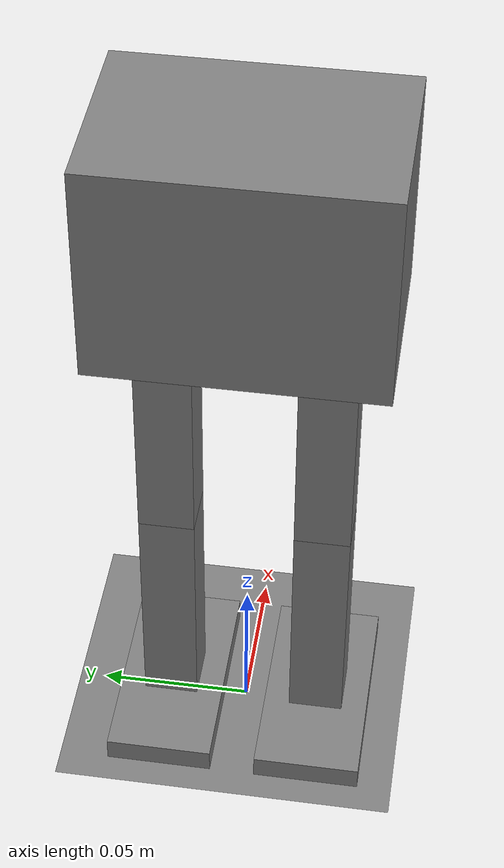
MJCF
<mujoco model="cadex-assembly">
  <compiler angle="radian" autolimits="false"/>

  <option integrator="implicitfast">
    <flag island="disable"/>
  </option>

  <size nkey="1"/>

  <worldbody>
    <body name="ground_link">
      <inertial pos="0 0 -0.005" quat="0 0.707107 0 0.707107" mass="1.5" diaginertia="0.03125 0.0200125 0.0112625"/>
      <geom name="ground_link/collision0" size="0.2 0.15 0.05" type="plane" conaffinity="2147483647"/>
    </body>
    <body name="torso_link" pos="0 0 0.203">
      <inertial pos="0 0 0" quat="0.707107 0.707107 0 0" mass="0.4725" diaginertia="0.000511875 0.000460688 0.000334688"/>
      <joint name="torso_link/free" type="free"/>
      <geom name="torso_link/collision0" size="0.03 0.045 0.035" type="box" conaffinity="2147483647"/>
      <body name="thigh_l_link" pos="0 0.025 -0.075">
        <inertial pos="0 0 0" mass="0.0324" diaginertia="1.81548e-05 1.81548e-05 1.7496e-06"/>
        <joint name="hip_l" pos="0 0 0.04" axis="0 1 0" limited="true" range="-1.0472 1.0472" armature="2e-05" damping="0.0458366" frictionloss="0.008"/>
        <geom name="thigh_l_link/collision0" size="0.009 0.009 0.04" type="box" conaffinity="2147483647"/>
        <body name="shin_l_link" pos="0 0 -0.08">
          <inertial pos="0 0 0" mass="0.0324" diaginertia="1.81548e-05 1.81548e-05 1.7496e-06"/>
          <joint name="knee_l" pos="0 0 0.04" axis="0 1 0" limited="true" range="0 1.91986" armature="2e-05" damping="0.0458366" frictionloss="0.008"/>
          <geom name="shin_l_link/collision0" size="0.009 0.009 0.04" type="box" conaffinity="2147483647"/>
          <body name="foot_l_link" pos="0 0 -0.044">
            <inertial pos="0 0 0" quat="0 0.707107 0 0.707107" mass="0.0245" diaginertia="1.25052e-05 1.01348e-05 2.63171e-06"/>
            <geom name="foot_l_link/collision0" size="0.035 0.0175 0.004" type="box" conaffinity="2147483647"/>
          </body>
        </body>
      </body>
      <body name="thigh_r_link" pos="0 -0.025 -0.075">
        <inertial pos="0 0 0" mass="0.0324" diaginertia="1.81548e-05 1.81548e-05 1.7496e-06"/>
        <joint name="hip_r" pos="0 0 0.04" axis="0 1 0" limited="true" range="-1.0472 1.0472" armature="2e-05" damping="0.0458366" frictionloss="0.008"/>
        <geom name="thigh_r_link/collision0" size="0.009 0.009 0.04" type="box" conaffinity="2147483647"/>
        <body name="shin_r_link" pos="0 0 -0.08">
          <inertial pos="0 0 0" mass="0.0324" diaginertia="1.81548e-05 1.81548e-05 1.7496e-06"/>
          <joint name="knee_r" pos="0 0 0.04" axis="0 1 0" limited="true" range="0 1.91986" armature="2e-05" damping="0.0458366" frictionloss="0.008"/>
          <geom name="shin_r_link/collision0" size="0.009 0.009 0.04" type="box" conaffinity="2147483647"/>
          <body name="foot_r_link" pos="0 0 -0.044">
            <inertial pos="0 0 0" quat="0 0.707107 0 0.707107" mass="0.0245" diaginertia="1.25052e-05 1.01348e-05 2.63171e-06"/>
            <geom name="foot_r_link/collision0" size="0.035 0.0175 0.004" type="box" conaffinity="2147483647"/>
          </body>
        </body>
      </body>
    </body>
  </worldbody>

  <contact>
    <exclude name="thigh_l_link|torso_link" body1="torso_link" body2="thigh_l_link"/>
    <exclude name="thigh_r_link|torso_link" body1="torso_link" body2="thigh_r_link"/>
    <exclude name="shin_l_link|thigh_l_link" body1="thigh_l_link" body2="shin_l_link"/>
    <exclude name="foot_l_link|shin_l_link" body1="shin_l_link" body2="foot_l_link"/>
    <exclude name="shin_r_link|thigh_r_link" body1="thigh_r_link" body2="shin_r_link"/>
    <exclude name="foot_r_link|shin_r_link" body1="shin_r_link" body2="foot_r_link"/>
  </contact>

  <actuator>
    <general name="hip_l/motor" joint="hip_l" ctrllimited="false" forcelimited="true" forcerange="-0.2 0.2"/>
    <general name="knee_l/motor" joint="knee_l" ctrllimited="false" forcelimited="true" forcerange="-0.2 0.2"/>
    <general name="hip_r/motor" joint="hip_r" ctrllimited="false" forcelimited="true" forcerange="-0.2 0.2"/>
    <general name="knee_r/motor" joint="knee_r" ctrllimited="false" forcelimited="true" forcerange="-0.2 0.2"/>
  </actuator>

  <sensor>
    <jointpos joint="hip_l" name="obs/0"/>
    <jointvel joint="hip_l" name="obs/1"/>

    <actuatorfrc actuator="hip_l/motor" name="obs/2"/>
    <jointpos joint="knee_l" name="obs/3"/>
    <jointvel joint="knee_l" name="obs/4"/>

    <actuatorfrc actuator="knee_l/motor" name="obs/5"/>
    <jointpos joint="hip_r" name="obs/6"/>
    <jointvel joint="hip_r" name="obs/7"/>

    <actuatorfrc actuator="hip_r/motor" name="obs/8"/>
    <jointpos joint="knee_r" name="obs/9"/>
    <jointvel joint="knee_r" name="obs/10"/>

    <actuatorfrc actuator="knee_r/motor" name="obs/11"/>
    <subtreecom body="torso_link" name="obs/12"/>
    <subtreelinvel body="torso_link" name="obs/13"/>
    <framequat objtype="xbody" objname="torso_link" name="obs/14"/>
    <frameangvel objtype="xbody" objname="torso_link" name="obs/15"/>
  </sensor>

  <keyframe>
    <key name="solved"/>
  </keyframe>
</mujoco>
